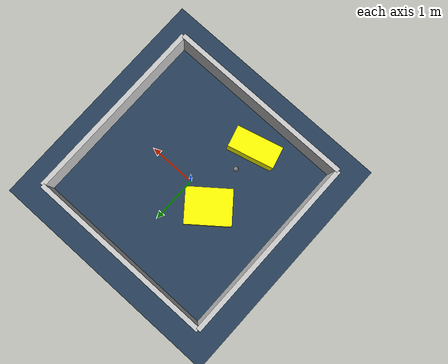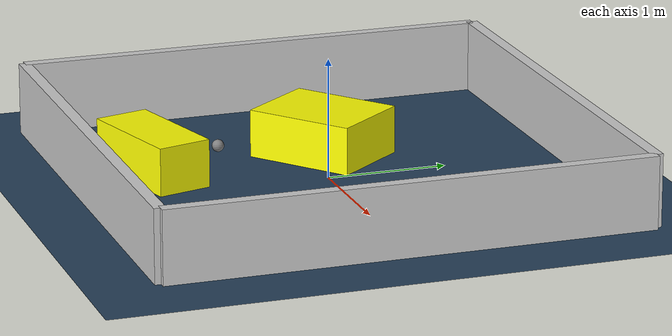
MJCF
<?xml version="1.0" ?>
<mujoco model="generated_environment">
  <option timestep="0.01" integrator="RK4" cone="elliptic"/>
  <default>
    <geom density="1"/>
  </default>
  <asset>
    <texture builtin="gradient" height="3072" rgb1="0.3 0.5 0.7" rgb2="0 0 0" type="skybox" width="512"/>
    <texture builtin="checker" height="300" mark="edge" markrgb="0.8 0.8 0.8" name="groundplane" rgb1="0.2 0.3 0.4" rgb2="0.1 0.2 0.3" type="2d" width="300"/>
    <material name="groundplane" reflectance="0.2" texrepeat="5 5" texture="groundplane" texuniform="true"/>
    <material name="robot" rgba="0.0 1.0 0.0 1"/>
  </asset>
  <worldbody>
    <light dir="0 0 -1" directional="true" pos="0 0 1.5"/>
    <geom condim="4" friction="1.0 0.005 0.001" material="groundplane" name="floor" size="0 0 0.05" type="plane"/>
    <body name="walls">
      <geom name="wall_1" condim="4" pos="-2.0 0.0 0.3" rgba="0.800000011920929 0.800000011920929 0.800000011920929 1.0" size="0.05 2.0 0.3" type="box"/>
      <geom name="wall_2" condim="4" pos="2.0 0.0 0.3" rgba="0.800000011920929 0.800000011920929 0.800000011920929 1.0" size="0.05 2.0 0.3" type="box"/>
      <geom name="wall_3" condim="4" pos="0.0 -2.0 0.3" rgba="0.800000011920929 0.800000011920929 0.800000011920929 1.0" size="2.0 0.05 0.3" type="box"/>
      <geom name="wall_4" condim="4" pos="0.0 2.0 0.3" rgba="0.800000011920929 0.800000011920929 0.800000011920929 1.0" size="2.0 0.05 0.3" type="box"/>
    </body>
    <body name="robot">
      <joint name="joint_x" type="slide" pos="0 0 0" axis="1 0 0"/>
      <joint name="joint_y" type="slide" pos="0 0 0" axis="0 1 0"/>
      <geom name="robot" type="sphere" pos="-0.51692873755703 -0.7727597481967863 0.2" size="0.05" mass="5." friction="1.0 0.005 0.0001" condim="4"/>
      <site name="sensor_ball"/>
    </body>
    <body name="obstacle_1_movable">
      <geom name="obstacle_1_movable" condim="4" pos="-0.6086585824542434 0.15796516559002383 0.2" euler="0 0 128.59217239679546" friction="1.0 0.005 0.001" rgba="1 1 0 1" size="0.3687096927763813 0.4697841907459242 0.2" type="box" mass="0.1"/>
      <joint type="free"/>
    </body>
    <body name="obstacle_2_movable">
      <geom name="obstacle_2_movable" condim="4" pos="-0.5095459754987781 -1.3260745669639322 0.2" euler="0 0 15.090468894774745" friction="1.0 0.005 0.001" rgba="1 1 0 1" size="0.49314206207670225 0.23023782474897683 0.2" type="box" mass="0.1"/>
      <joint type="free"/>
    </body>
  </worldbody>
  <actuator>
    <motor name="actuator_x" joint="joint_x" gear="1" ctrlrange="-1 1"/>
    <motor name="actuator_y" joint="joint_y" gear="1" ctrlrange="-1 1"/>
  </actuator>
</mujoco>
